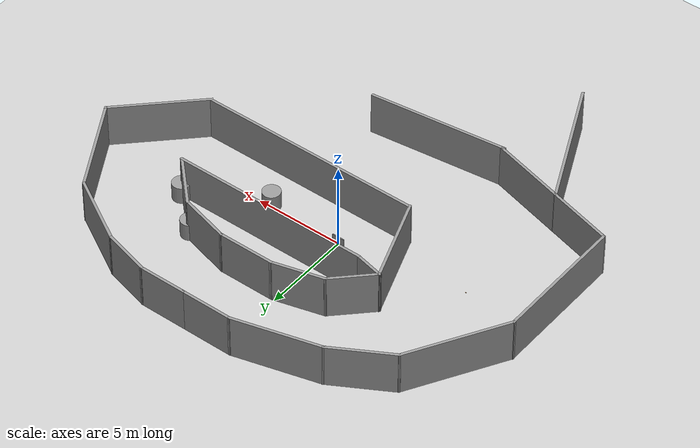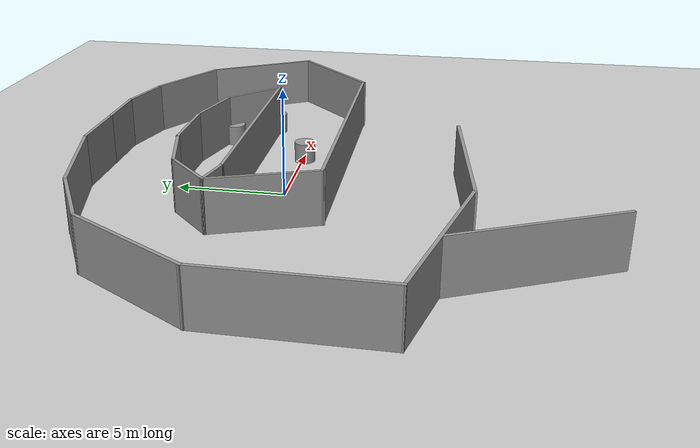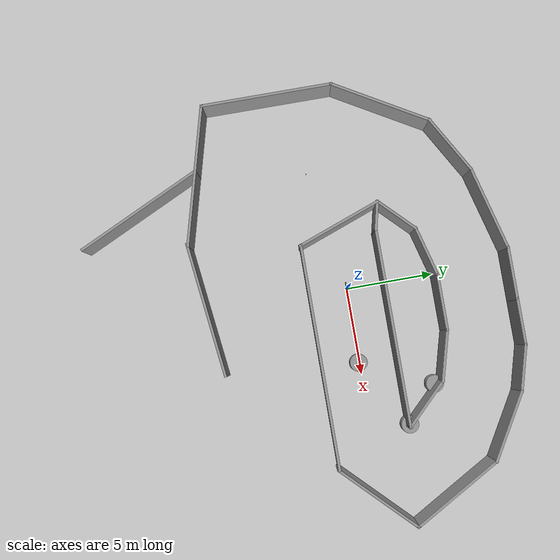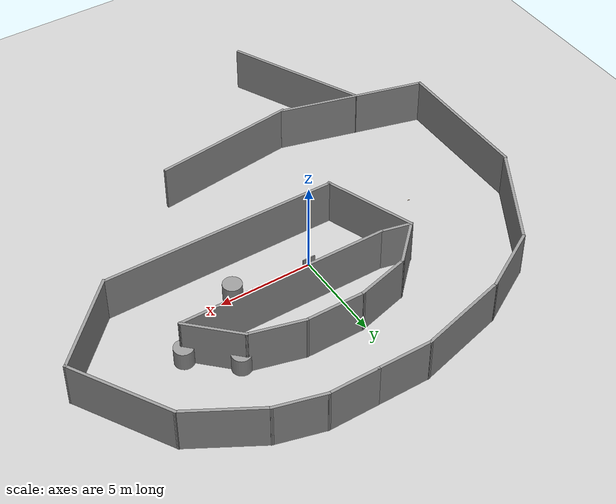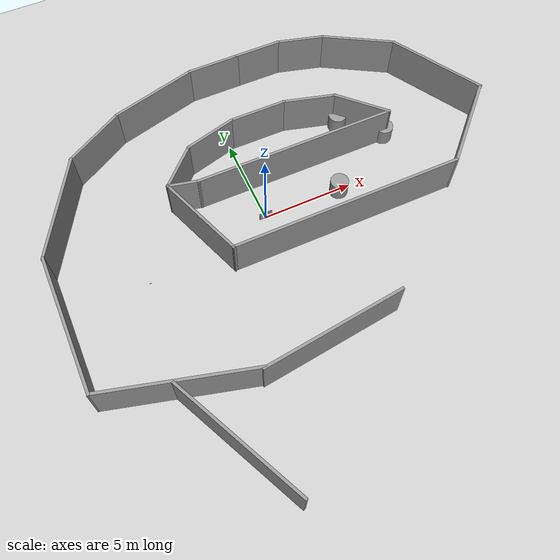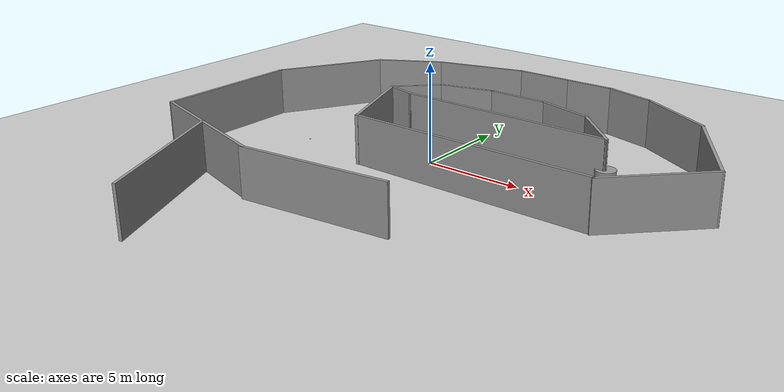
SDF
<sdf version="1.7">
 <world name="default">
  <light name="sun" type="directional">
   <pose>0 0 10 0 -0 0</pose>
   <diffuse>0.8 0.8 0.8 1</diffuse>
   <specular>0.2 0.2 0.2 1</specular>
   <attenuation>
    <range>1000</range>
    <constant>0.9</constant>
    <linear>0.01</linear>
    <quadratic>0.001</quadratic>
   </attenuation>
   <direction>-0.5 0.1 -0.9</direction>
   <spot><inner_angle>0</inner_angle><outer_angle>0</outer_angle><falloff>0</falloff></spot>
  </light>
  <model name="ground_plane">
   <static>1</static>
   <link name="link">
    <collision name="collision">
     <geometry><plane><normal>0 0 1</normal><size>100 100</size></plane></geometry>
     <surface><friction><ode><mu>100</mu><mu2>50</mu2></ode></friction></surface>
    </collision>
    <visual name="visual">
     <cast_shadows>0</cast_shadows>
     <geometry><plane><normal>0 0 1</normal><size>100 100</size></plane></geometry>
     <material>
      <script><uri>file://media/materials/scripts/gazebo.material</uri><name>Gazebo/Grey</name></script>
     </material>
    </visual>
   </link>
  </model>
  <gravity>0 0 -9.8</gravity>
  <magnetic_field>6e-06 2.3e-05 -4.2e-05</magnetic_field>
  <atmosphere type="adiabatic"/>
  <physics type="ode">
   <max_step_size>0.001</max_step_size>
   <real_time_factor>1</real_time_factor>
   <real_time_update_rate>1000</real_time_update_rate>
  </physics>
  <scene><ambient>0.4 0.4 0.4 1</ambient><background>0.7 0.7 0.7 1</background><shadows>1</shadows></scene>
  <spherical_coordinates>
   <surface_model>EARTH_WGS84</surface_model>
   <latitude_deg>0</latitude_deg>
   <longitude_deg>0</longitude_deg>
   <elevation>0</elevation>
   <heading_deg>0</heading_deg>
  </spherical_coordinates>
  <model name="Untitled">
   <link name="Wall_10">
    <pose>-2.36021 4.26333 0 0 0 -2.87979</pose>
    <visual name="Wall_10_Visual">
     <pose>0 0 1.25 0 -0 0</pose>
     <geometry><box><size>3 0.15 2.5</size></box></geometry>
     <material>
      <script><uri>file://media/materials/scripts/gazebo.material</uri><name>Gazebo/Grey</name></script>
      <ambient>1 1 1 1</ambient>
      <shader type="pixel"/>
     </material>
     <meta><layer>0</layer></meta>
    </visual>
    <collision name="Wall_10_Collision">
     <pose>0 0 1.25 0 -0 0</pose>
     <geometry><box><size>3 0.15 2.5</size></box></geometry>
     <surface>
      <friction>
       <ode><mu>1</mu><mu2>1</mu2><fdir1>0 0 0</fdir1><slip1>0</slip1><slip2>0</slip2></ode>
       <torsional>
        <coefficient>1</coefficient>
        <patch_radius>0</patch_radius>
        <surface_radius>0</surface_radius>
        <use_patch_radius>1</use_patch_radius>
        <ode><slip>0</slip></ode>
       </torsional>
      </friction>
      <bounce><restitution_coefficient>0</restitution_coefficient><threshold>1e+06</threshold></bounce>
      <contact>
       <collide_without_contact>0</collide_without_contact>
       <collide_without_contact_bitmask>1</collide_without_contact_bitmask>
       <collide_bitmask>1</collide_bitmask>
       <ode>
        <soft_cfm>0</soft_cfm>
        <soft_erp>0.2</soft_erp>
        <kp>1e+13</kp>
        <kd>1</kd>
        <max_vel>0.01</max_vel>
        <min_depth>0</min_depth>
       </ode>
       <bullet>
        <split_impulse>1</split_impulse>
        <split_impulse_penetration_threshold>-0.01</split_impulse_penetration_threshold>
        <soft_cfm>0</soft_cfm>
        <soft_erp>0.2</soft_erp>
        <kp>1e+13</kp>
        <kd>1</kd>
       </bullet>
      </contact>
     </surface>
    </collision>
   </link>
   <link name="Wall_11">
    <pose>-4.65589 2.97527 0 0 0 -2.35619</pose>
    <visual name="Wall_11_Visual">
     <pose>0 0 1.25 0 -0 0</pose>
     <geometry><box><size>2.75 0.15 2.5</size></box></geometry>
     <material>
      <script><uri>file://media/materials/scripts/gazebo.material</uri><name>Gazebo/Grey</name></script>
      <ambient>1 1 1 1</ambient>
      <shader type="pixel"/>
     </material>
     <meta><layer>0</layer></meta>
    </visual>
    <collision name="Wall_11_Collision">
     <pose>0 0 1.25 0 -0 0</pose>
     <geometry><box><size>2.75 0.15 2.5</size></box></geometry>
     <surface>
      <friction>
       <ode><mu>1</mu><mu2>1</mu2><fdir1>0 0 0</fdir1><slip1>0</slip1><slip2>0</slip2></ode>
       <torsional>
        <coefficient>1</coefficient>
        <patch_radius>0</patch_radius>
        <surface_radius>0</surface_radius>
        <use_patch_radius>1</use_patch_radius>
        <ode><slip>0</slip></ode>
       </torsional>
      </friction>
      <bounce><restitution_coefficient>0</restitution_coefficient><threshold>1e+06</threshold></bounce>
      <contact>
       <collide_without_contact>0</collide_without_contact>
       <collide_without_contact_bitmask>1</collide_without_contact_bitmask>
       <collide_bitmask>1</collide_bitmask>
       <ode>
        <soft_cfm>0</soft_cfm>
        <soft_erp>0.2</soft_erp>
        <kp>1e+13</kp>
        <kd>1</kd>
        <max_vel>0.01</max_vel>
        <min_depth>0</min_depth>
       </ode>
       <bullet>
        <split_impulse>1</split_impulse>
        <split_impulse_penetration_threshold>-0.01</split_impulse_penetration_threshold>
        <soft_cfm>0</soft_cfm>
        <soft_erp>0.2</soft_erp>
        <kp>1e+13</kp>
        <kd>1</kd>
       </bullet>
      </contact>
     </surface>
    </collision>
   </link>
   <link name="Wall_12">
    <pose>-4.80699 1.87926 0 0 0 -0.226197</pose>
    <visual name="Wall_12_Visual">
     <pose>0 0 1.25 0 -0 0</pose>
     <geometry><box><size>1.72644 0.15 2.5</size></box></geometry>
     <material>
      <script><uri>file://media/materials/scripts/gazebo.material</uri><name>Gazebo/Grey</name></script>
      <ambient>1 1 1 1</ambient>
      <shader type="pixel"/>
     </material>
     <meta><layer>0</layer></meta>
    </visual>
    <collision name="Wall_12_Collision">
     <pose>0 0 1.25 0 -0 0</pose>
     <geometry><box><size>1.72644 0.15 2.5</size></box></geometry>
     <surface>
      <friction>
       <ode><mu>1</mu><mu2>1</mu2><fdir1>0 0 0</fdir1><slip1>0</slip1><slip2>0</slip2></ode>
       <torsional>
        <coefficient>1</coefficient>
        <patch_radius>0</patch_radius>
        <surface_radius>0</surface_radius>
        <use_patch_radius>1</use_patch_radius>
        <ode><slip>0</slip></ode>
       </torsional>
      </friction>
      <bounce><restitution_coefficient>0</restitution_coefficient><threshold>1e+06</threshold></bounce>
      <contact>
       <collide_without_contact>0</collide_without_contact>
       <collide_without_contact_bitmask>1</collide_without_contact_bitmask>
       <collide_bitmask>1</collide_bitmask>
       <ode>
        <soft_cfm>0</soft_cfm>
        <soft_erp>0.2</soft_erp>
        <kp>1e+13</kp>
        <kd>1</kd>
        <max_vel>0.01</max_vel>
        <min_depth>0</min_depth>
       </ode>
       <bullet>
        <split_impulse>1</split_impulse>
        <split_impulse_penetration_threshold>-0.01</split_impulse_penetration_threshold>
        <soft_cfm>0</soft_cfm>
        <soft_erp>0.2</soft_erp>
        <kp>1e+13</kp>
        <kd>1</kd>
       </bullet>
      </contact>
     </surface>
    </collision>
   </link>
   <link name="Wall_21">
    <pose>2.41944 -2.56 0 0 -0 0</pose>
    <visual name="Wall_21_Visual">
     <pose>0 0 1.25 0 -0 0</pose>
     <geometry><box><size>12.75 0.15 2.5</size></box></geometry>
     <material>
      <script><uri>file://media/materials/scripts/gazebo.material</uri><name>Gazebo/Grey</name></script>
      <ambient>1 1 1 1</ambient>
      <shader type="pixel"/>
     </material>
     <meta><layer>0</layer></meta>
    </visual>
    <collision name="Wall_21_Collision">
     <pose>0 0 1.25 0 -0 0</pose>
     <geometry><box><size>12.75 0.15 2.5</size></box></geometry>
     <surface>
      <friction>
       <ode><mu>1</mu><mu2>1</mu2><fdir1>0 0 0</fdir1><slip1>0</slip1><slip2>0</slip2></ode>
       <torsional>
        <coefficient>1</coefficient>
        <patch_radius>0</patch_radius>
        <surface_radius>0</surface_radius>
        <use_patch_radius>1</use_patch_radius>
        <ode><slip>0</slip></ode>
       </torsional>
      </friction>
      <bounce><restitution_coefficient>0</restitution_coefficient><threshold>1e+06</threshold></bounce>
      <contact>
       <collide_without_contact>0</collide_without_contact>
       <collide_without_contact_bitmask>1</collide_without_contact_bitmask>
       <collide_bitmask>1</collide_bitmask>
       <ode>
        <soft_cfm>0</soft_cfm>
        <soft_erp>0.2</soft_erp>
        <kp>1e+13</kp>
        <kd>1</kd>
        <max_vel>0.01</max_vel>
        <min_depth>0</min_depth>
       </ode>
       <bullet>
        <split_impulse>1</split_impulse>
        <split_impulse_penetration_threshold>-0.01</split_impulse_penetration_threshold>
        <soft_cfm>0</soft_cfm>
        <soft_erp>0.2</soft_erp>
        <kp>1e+13</kp>
        <kd>1</kd>
       </bullet>
      </contact>
     </surface>
    </collision>
   </link>
   <link name="Wall_22">
    <pose>10.6265 -0.705453 0 0 -0 0.785398</pose>
    <visual name="Wall_22_Visual">
     <pose>0 0 1.25 0 -0 0</pose>
     <geometry><box><size>5.5 0.15 2.5</size></box></geometry>
     <material>
      <script><uri>file://media/materials/scripts/gazebo.material</uri><name>Gazebo/Grey</name></script>
      <ambient>1 1 1 1</ambient>
      <shader type="pixel"/>
     </material>
     <meta><layer>0</layer></meta>
    </visual>
    <collision name="Wall_22_Collision">
     <pose>0 0 1.25 0 -0 0</pose>
     <geometry><box><size>5.5 0.15 2.5</size></box></geometry>
     <surface>
      <friction>
       <ode><mu>1</mu><mu2>1</mu2><fdir1>0 0 0</fdir1><slip1>0</slip1><slip2>0</slip2></ode>
       <torsional>
        <coefficient>1</coefficient>
        <patch_radius>0</patch_radius>
        <surface_radius>0</surface_radius>
        <use_patch_radius>1</use_patch_radius>
        <ode><slip>0</slip></ode>
       </torsional>
      </friction>
      <bounce><restitution_coefficient>0</restitution_coefficient><threshold>1e+06</threshold></bounce>
      <contact>
       <collide_without_contact>0</collide_without_contact>
       <collide_without_contact_bitmask>1</collide_without_contact_bitmask>
       <collide_bitmask>1</collide_bitmask>
       <ode>
        <soft_cfm>0</soft_cfm>
        <soft_erp>0.2</soft_erp>
        <kp>1e+13</kp>
        <kd>1</kd>
        <max_vel>0.01</max_vel>
        <min_depth>0</min_depth>
       </ode>
       <bullet>
        <split_impulse>1</split_impulse>
        <split_impulse_penetration_threshold>-0.01</split_impulse_penetration_threshold>
        <soft_cfm>0</soft_cfm>
        <soft_erp>0.2</soft_erp>
        <kp>1e+13</kp>
        <kd>1</kd>
       </bullet>
      </contact>
     </surface>
    </collision>
   </link>
   <link name="Wall_23">
    <pose>11.118 3.61093 0 0 -0 2.0944</pose>
    <visual name="Wall_23_Visual">
     <pose>0 0 1.25 0 -0 0</pose>
     <geometry><box><size>5.75 0.15 2.5</size></box></geometry>
     <material>
      <script><uri>file://media/materials/scripts/gazebo.material</uri><name>Gazebo/Grey</name></script>
      <ambient>1 1 1 1</ambient>
      <shader type="pixel"/>
     </material>
     <meta><layer>0</layer></meta>
    </visual>
    <collision name="Wall_23_Collision">
     <pose>0 0 1.25 0 -0 0</pose>
     <geometry><box><size>5.75 0.15 2.5</size></box></geometry>
     <surface>
      <friction>
       <ode><mu>1</mu><mu2>1</mu2><fdir1>0 0 0</fdir1><slip1>0</slip1><slip2>0</slip2></ode>
       <torsional>
        <coefficient>1</coefficient>
        <patch_radius>0</patch_radius>
        <surface_radius>0</surface_radius>
        <use_patch_radius>1</use_patch_radius>
        <ode><slip>0</slip></ode>
       </torsional>
      </friction>
      <bounce><restitution_coefficient>0</restitution_coefficient><threshold>1e+06</threshold></bounce>
      <contact>
       <collide_without_contact>0</collide_without_contact>
       <collide_without_contact_bitmask>1</collide_without_contact_bitmask>
       <collide_bitmask>1</collide_bitmask>
       <ode>
        <soft_cfm>0</soft_cfm>
        <soft_erp>0.2</soft_erp>
        <kp>1e+13</kp>
        <kd>1</kd>
        <max_vel>0.01</max_vel>
        <min_depth>0</min_depth>
       </ode>
       <bullet>
        <split_impulse>1</split_impulse>
        <split_impulse_penetration_threshold>-0.01</split_impulse_penetration_threshold>
        <soft_cfm>0</soft_cfm>
        <soft_erp>0.2</soft_erp>
        <kp>1e+13</kp>
        <kd>1</kd>
       </bullet>
      </contact>
     </surface>
    </collision>
   </link>
   <link name="Wall_24">
    <pose>7.94261 7.0608 0 0 -0 2.61799</pose>
    <visual name="Wall_24_Visual">
     <pose>0 0 1.25 0 -0 0</pose>
     <geometry><box><size>4.25 0.15 2.5</size></box></geometry>
     <material>
      <script><uri>file://media/materials/scripts/gazebo.material</uri><name>Gazebo/Grey</name></script>
      <ambient>1 1 1 1</ambient>
      <shader type="pixel"/>
     </material>
     <meta><layer>0</layer></meta>
    </visual>
    <collision name="Wall_24_Collision">
     <pose>0 0 1.25 0 -0 0</pose>
     <geometry><box><size>4.25 0.15 2.5</size></box></geometry>
     <surface>
      <friction>
       <ode><mu>1</mu><mu2>1</mu2><fdir1>0 0 0</fdir1><slip1>0</slip1><slip2>0</slip2></ode>
       <torsional>
        <coefficient>1</coefficient>
        <patch_radius>0</patch_radius>
        <surface_radius>0</surface_radius>
        <use_patch_radius>1</use_patch_radius>
        <ode><slip>0</slip></ode>
       </torsional>
      </friction>
      <bounce><restitution_coefficient>0</restitution_coefficient><threshold>1e+06</threshold></bounce>
      <contact>
       <collide_without_contact>0</collide_without_contact>
       <collide_without_contact_bitmask>1</collide_without_contact_bitmask>
       <collide_bitmask>1</collide_bitmask>
       <ode>
        <soft_cfm>0</soft_cfm>
        <soft_erp>0.2</soft_erp>
        <kp>1e+13</kp>
        <kd>1</kd>
        <max_vel>0.01</max_vel>
        <min_depth>0</min_depth>
       </ode>
       <bullet>
        <split_impulse>1</split_impulse>
        <split_impulse_penetration_threshold>-0.01</split_impulse_penetration_threshold>
        <soft_cfm>0</soft_cfm>
        <soft_erp>0.2</soft_erp>
        <kp>1e+13</kp>
        <kd>1</kd>
       </bullet>
      </contact>
     </surface>
    </collision>
   </link>
   <link name="Wall_25">
    <pose>4.91156 8.42226 0 0 -0 2.87979</pose>
    <visual name="Wall_25_Visual">
     <pose>0 0 1.25 0 -0 0</pose>
     <geometry><box><size>2.75 0.15 2.5</size></box></geometry>
     <material>
      <script><uri>file://media/materials/scripts/gazebo.material</uri><name>Gazebo/Grey</name></script>
      <ambient>1 1 1 1</ambient>
      <shader type="pixel"/>
     </material>
     <meta><layer>0</layer></meta>
    </visual>
    <collision name="Wall_25_Collision">
     <pose>0 0 1.25 0 -0 0</pose>
     <geometry><box><size>2.75 0.15 2.5</size></box></geometry>
     <surface>
      <friction>
       <ode><mu>1</mu><mu2>1</mu2><fdir1>0 0 0</fdir1><slip1>0</slip1><slip2>0</slip2></ode>
       <torsional>
        <coefficient>1</coefficient>
        <patch_radius>0</patch_radius>
        <surface_radius>0</surface_radius>
        <use_patch_radius>1</use_patch_radius>
        <ode><slip>0</slip></ode>
       </torsional>
      </friction>
      <bounce><restitution_coefficient>0</restitution_coefficient><threshold>1e+06</threshold></bounce>
      <contact>
       <collide_without_contact>0</collide_without_contact>
       <collide_without_contact_bitmask>1</collide_without_contact_bitmask>
       <collide_bitmask>1</collide_bitmask>
       <ode>
        <soft_cfm>0</soft_cfm>
        <soft_erp>0.2</soft_erp>
        <kp>1e+13</kp>
        <kd>1</kd>
        <max_vel>0.01</max_vel>
        <min_depth>0</min_depth>
       </ode>
       <bullet>
        <split_impulse>1</split_impulse>
        <split_impulse_penetration_threshold>-0.01</split_impulse_penetration_threshold>
        <soft_cfm>0</soft_cfm>
        <soft_erp>0.2</soft_erp>
        <kp>1e+13</kp>
        <kd>1</kd>
       </bullet>
      </contact>
     </surface>
    </collision>
   </link>
   <link name="Wall_26">
    <pose>2.35585 8.75873 0 0 -0 3.14159</pose>
    <visual name="Wall_26_Visual">
     <pose>0 0 1.25 0 -0 0</pose>
     <geometry><box><size>2.75 0.15 2.5</size></box></geometry>
     <material>
      <script><uri>file://media/materials/scripts/gazebo.material</uri><name>Gazebo/Grey</name></script>
      <ambient>1 1 1 1</ambient>
      <shader type="pixel"/>
     </material>
     <meta><layer>0</layer></meta>
    </visual>
    <collision name="Wall_26_Collision">
     <pose>0 0 1.25 0 -0 0</pose>
     <geometry><box><size>2.75 0.15 2.5</size></box></geometry>
     <surface>
      <friction>
       <ode><mu>1</mu><mu2>1</mu2><fdir1>0 0 0</fdir1><slip1>0</slip1><slip2>0</slip2></ode>
       <torsional>
        <coefficient>1</coefficient>
        <patch_radius>0</patch_radius>
        <surface_radius>0</surface_radius>
        <use_patch_radius>1</use_patch_radius>
        <ode><slip>0</slip></ode>
       </torsional>
      </friction>
      <bounce><restitution_coefficient>0</restitution_coefficient><threshold>1e+06</threshold></bounce>
      <contact>
       <collide_without_contact>0</collide_without_contact>
       <collide_without_contact_bitmask>1</collide_without_contact_bitmask>
       <collide_bitmask>1</collide_bitmask>
       <ode>
        <soft_cfm>0</soft_cfm>
        <soft_erp>0.2</soft_erp>
        <kp>1e+13</kp>
        <kd>1</kd>
        <max_vel>0.01</max_vel>
        <min_depth>0</min_depth>
       </ode>
       <bullet>
        <split_impulse>1</split_impulse>
        <split_impulse_penetration_threshold>-0.01</split_impulse_penetration_threshold>
        <soft_cfm>0</soft_cfm>
        <soft_erp>0.2</soft_erp>
        <kp>1e+13</kp>
        <kd>1</kd>
       </bullet>
      </contact>
     </surface>
    </collision>
   </link>
   <link name="Wall_27">
    <pose>-0.369147 8.75873 0 0 -0 3.14159</pose>
    <visual name="Wall_27_Visual">
     <pose>0 0 1.25 0 -0 0</pose>
     <geometry><box><size>3 0.15 2.5</size></box></geometry>
     <material>
      <script><uri>file://media/materials/scripts/gazebo.material</uri><name>Gazebo/Grey</name></script>
      <ambient>1 1 1 1</ambient>
      <shader type="pixel"/>
     </material>
     <meta><layer>0</layer></meta>
    </visual>
    <collision name="Wall_27_Collision">
     <pose>0 0 1.25 0 -0 0</pose>
     <geometry><box><size>3 0.15 2.5</size></box></geometry>
     <surface>
      <friction>
       <ode><mu>1</mu><mu2>1</mu2><fdir1>0 0 0</fdir1><slip1>0</slip1><slip2>0</slip2></ode>
       <torsional>
        <coefficient>1</coefficient>
        <patch_radius>0</patch_radius>
        <surface_radius>0</surface_radius>
        <use_patch_radius>1</use_patch_radius>
        <ode><slip>0</slip></ode>
       </torsional>
      </friction>
      <bounce><restitution_coefficient>0</restitution_coefficient><threshold>1e+06</threshold></bounce>
      <contact>
       <collide_without_contact>0</collide_without_contact>
       <collide_without_contact_bitmask>1</collide_without_contact_bitmask>
       <collide_bitmask>1</collide_bitmask>
       <ode>
        <soft_cfm>0</soft_cfm>
        <soft_erp>0.2</soft_erp>
        <kp>1e+13</kp>
        <kd>1</kd>
        <max_vel>0.01</max_vel>
        <min_depth>0</min_depth>
       </ode>
       <bullet>
        <split_impulse>1</split_impulse>
        <split_impulse_penetration_threshold>-0.01</split_impulse_penetration_threshold>
        <soft_cfm>0</soft_cfm>
        <soft_erp>0.2</soft_erp>
        <kp>1e+13</kp>
        <kd>1</kd>
       </bullet>
      </contact>
     </surface>
    </collision>
   </link>
   <link name="Wall_28">
    <pose>-4.13652 8.13109 0 0 0 -2.87979</pose>
    <visual name="Wall_28_Visual">
     <pose>0 0 1.25 0 -0 0</pose>
     <geometry><box><size>5 0.15 2.5</size></box></geometry>
     <material>
      <script><uri>file://media/materials/scripts/gazebo.material</uri><name>Gazebo/Grey</name></script>
      <ambient>1 1 1 1</ambient>
      <shader type="pixel"/>
     </material>
     <meta><layer>0</layer></meta>
    </visual>
    <collision name="Wall_28_Collision">
     <pose>0 0 1.25 0 -0 0</pose>
     <geometry><box><size>5 0.15 2.5</size></box></geometry>
     <surface>
      <friction>
       <ode><mu>1</mu><mu2>1</mu2><fdir1>0 0 0</fdir1><slip1>0</slip1><slip2>0</slip2></ode>
       <torsional>
        <coefficient>1</coefficient>
        <patch_radius>0</patch_radius>
        <surface_radius>0</surface_radius>
        <use_patch_radius>1</use_patch_radius>
        <ode><slip>0</slip></ode>
       </torsional>
      </friction>
      <bounce><restitution_coefficient>0</restitution_coefficient><threshold>1e+06</threshold></bounce>
      <contact>
       <collide_without_contact>0</collide_without_contact>
       <collide_without_contact_bitmask>1</collide_without_contact_bitmask>
       <collide_bitmask>1</collide_bitmask>
       <ode>
        <soft_cfm>0</soft_cfm>
        <soft_erp>0.2</soft_erp>
        <kp>1e+13</kp>
        <kd>1</kd>
        <max_vel>0.01</max_vel>
        <min_depth>0</min_depth>
       </ode>
       <bullet>
        <split_impulse>1</split_impulse>
        <split_impulse_penetration_threshold>-0.01</split_impulse_penetration_threshold>
        <soft_cfm>0</soft_cfm>
        <soft_erp>0.2</soft_erp>
        <kp>1e+13</kp>
        <kd>1</kd>
       </bullet>
      </contact>
     </surface>
    </collision>
   </link>
   <link name="Wall_29">
    <pose>-8.03773 6.60346 0 0 0 -2.61799</pose>
    <visual name="Wall_29_Visual">
     <pose>0 0 1.25 0 -0 0</pose>
     <geometry><box><size>3.75 0.15 2.5</size></box></geometry>
     <material>
      <script><uri>file://media/materials/scripts/gazebo.material</uri><name>Gazebo/Grey</name></script>
      <ambient>1 1 1 1</ambient>
      <shader type="pixel"/>
     </material>
     <meta><layer>0</layer></meta>
    </visual>
    <collision name="Wall_29_Collision">
     <pose>0 0 1.25 0 -0 0</pose>
     <geometry><box><size>3.75 0.15 2.5</size></box></geometry>
     <surface>
      <friction>
       <ode><mu>1</mu><mu2>1</mu2><fdir1>0 0 0</fdir1><slip1>0</slip1><slip2>0</slip2></ode>
       <torsional>
        <coefficient>1</coefficient>
        <patch_radius>0</patch_radius>
        <surface_radius>0</surface_radius>
        <use_patch_radius>1</use_patch_radius>
        <ode><slip>0</slip></ode>
       </torsional>
      </friction>
      <bounce><restitution_coefficient>0</restitution_coefficient><threshold>1e+06</threshold></bounce>
      <contact>
       <collide_without_contact>0</collide_without_contact>
       <collide_without_contact_bitmask>1</collide_without_contact_bitmask>
       <collide_bitmask>1</collide_bitmask>
       <ode>
        <soft_cfm>0</soft_cfm>
        <soft_erp>0.2</soft_erp>
        <kp>1e+13</kp>
        <kd>1</kd>
        <max_vel>0.01</max_vel>
        <min_depth>0</min_depth>
       </ode>
       <bullet>
        <split_impulse>1</split_impulse>
        <split_impulse_penetration_threshold>-0.01</split_impulse_penetration_threshold>
        <soft_cfm>0</soft_cfm>
        <soft_erp>0.2</soft_erp>
        <kp>1e+13</kp>
        <kd>1</kd>
       </bullet>
      </contact>
     </surface>
    </collision>
   </link>
   <link name="Wall_31">
    <pose>-11.0591 3.17033 0 0 0 -2.0944</pose>
    <visual name="Wall_31_Visual">
     <pose>0 0 1.25 0 -0 0</pose>
     <geometry><box><size>6 0.15 2.5</size></box></geometry>
     <material>
      <script><uri>file://media/materials/scripts/gazebo.material</uri><name>Gazebo/Grey</name></script>
      <ambient>1 1 1 1</ambient>
      <shader type="pixel"/>
     </material>
     <meta><layer>0</layer></meta>
    </visual>
    <collision name="Wall_31_Collision">
     <pose>0 0 1.25 0 -0 0</pose>
     <geometry><box><size>6 0.15 2.5</size></box></geometry>
     <surface>
      <friction>
       <ode><mu>1</mu><mu2>1</mu2><fdir1>0 0 0</fdir1><slip1>0</slip1><slip2>0</slip2></ode>
       <torsional>
        <coefficient>1</coefficient>
        <patch_radius>0</patch_radius>
        <surface_radius>0</surface_radius>
        <use_patch_radius>1</use_patch_radius>
        <ode><slip>0</slip></ode>
       </torsional>
      </friction>
      <bounce><restitution_coefficient>0</restitution_coefficient><threshold>1e+06</threshold></bounce>
      <contact>
       <collide_without_contact>0</collide_without_contact>
       <collide_without_contact_bitmask>1</collide_without_contact_bitmask>
       <collide_bitmask>1</collide_bitmask>
       <ode>
        <soft_cfm>0</soft_cfm>
        <soft_erp>0.2</soft_erp>
        <kp>1e+13</kp>
        <kd>1</kd>
        <max_vel>0.01</max_vel>
        <min_depth>0</min_depth>
       </ode>
       <bullet>
        <split_impulse>1</split_impulse>
        <split_impulse_penetration_threshold>-0.01</split_impulse_penetration_threshold>
        <soft_cfm>0</soft_cfm>
        <soft_erp>0.2</soft_erp>
        <kp>1e+13</kp>
        <kd>1</kd>
       </bullet>
      </contact>
     </surface>
    </collision>
   </link>
   <link name="Wall_32">
    <pose>-12.5216 -3.03779 0 0 0 -1.5708</pose>
    <visual name="Wall_32_Visual">
     <pose>0 0 1.25 0 -0 0</pose>
     <geometry><box><size>7.5 0.15 2.5</size></box></geometry>
     <material>
      <script><uri>file://media/materials/scripts/gazebo.material</uri><name>Gazebo/Grey</name></script>
      <ambient>1 1 1 1</ambient>
      <shader type="pixel"/>
     </material>
     <meta><layer>0</layer></meta>
    </visual>
    <collision name="Wall_32_Collision">
     <pose>0 0 1.25 0 -0 0</pose>
     <geometry><box><size>7.5 0.15 2.5</size></box></geometry>
     <surface>
      <friction>
       <ode><mu>1</mu><mu2>1</mu2><fdir1>0 0 0</fdir1><slip1>0</slip1><slip2>0</slip2></ode>
       <torsional>
        <coefficient>1</coefficient>
        <patch_radius>0</patch_radius>
        <surface_radius>0</surface_radius>
        <use_patch_radius>1</use_patch_radius>
        <ode><slip>0</slip></ode>
       </torsional>
      </friction>
      <bounce><restitution_coefficient>0</restitution_coefficient><threshold>1e+06</threshold></bounce>
      <contact>
       <collide_without_contact>0</collide_without_contact>
       <collide_without_contact_bitmask>1</collide_without_contact_bitmask>
       <collide_bitmask>1</collide_bitmask>
       <ode>
        <soft_cfm>0</soft_cfm>
        <soft_erp>0.2</soft_erp>
        <kp>1e+13</kp>
        <kd>1</kd>
        <max_vel>0.01</max_vel>
        <min_depth>0</min_depth>
       </ode>
       <bullet>
        <split_impulse>1</split_impulse>
        <split_impulse_penetration_threshold>-0.01</split_impulse_penetration_threshold>
        <soft_cfm>0</soft_cfm>
        <soft_erp>0.2</soft_erp>
        <kp>1e+13</kp>
        <kd>1</kd>
       </bullet>
      </contact>
     </surface>
    </collision>
   </link>
   <link name="Wall_33">
    <pose>-8.73032 -7.72866 0 0 0 -0.261799</pose>
    <visual name="Wall_33_Visual">
     <pose>0 0 1.25 0 -0 0</pose>
     <geometry><box><size>8 0.15 2.5</size></box></geometry>
     <material>
      <script><uri>file://media/materials/scripts/gazebo.material</uri><name>Gazebo/Grey</name></script>
      <ambient>1 1 1 1</ambient>
      <shader type="pixel"/>
     </material>
     <meta><layer>0</layer></meta>
    </visual>
    <collision name="Wall_33_Collision">
     <pose>0 0 1.25 0 -0 0</pose>
     <geometry><box><size>8 0.15 2.5</size></box></geometry>
     <surface>
      <friction>
       <ode><mu>1</mu><mu2>1</mu2><fdir1>0 0 0</fdir1><slip1>0</slip1><slip2>0</slip2></ode>
       <torsional>
        <coefficient>1</coefficient>
        <patch_radius>0</patch_radius>
        <surface_radius>0</surface_radius>
        <use_patch_radius>1</use_patch_radius>
        <ode><slip>0</slip></ode>
       </torsional>
      </friction>
      <bounce><restitution_coefficient>0</restitution_coefficient><threshold>1e+06</threshold></bounce>
      <contact>
       <collide_without_contact>0</collide_without_contact>
       <collide_without_contact_bitmask>1</collide_without_contact_bitmask>
       <collide_bitmask>1</collide_bitmask>
       <ode>
        <soft_cfm>0</soft_cfm>
        <soft_erp>0.2</soft_erp>
        <kp>1e+13</kp>
        <kd>1</kd>
        <max_vel>0.01</max_vel>
        <min_depth>0</min_depth>
       </ode>
       <bullet>
        <split_impulse>1</split_impulse>
        <split_impulse_penetration_threshold>-0.01</split_impulse_penetration_threshold>
        <soft_cfm>0</soft_cfm>
        <soft_erp>0.2</soft_erp>
        <kp>1e+13</kp>
        <kd>1</kd>
       </bullet>
      </contact>
     </surface>
    </collision>
   </link>
   <link name="Wall_34">
    <pose>-1.23931 -8.34059 0 0 -0 0.11774</pose>
    <visual name="Wall_34_Visual">
     <pose>0 0 1.25 0 -0 0</pose>
     <geometry><box><size>7.75 0.15 2.5</size></box></geometry>
     <material>
      <script><uri>file://media/materials/scripts/gazebo.material</uri><name>Gazebo/Grey</name></script>
      <ambient>1 1 1 1</ambient>
      <shader type="pixel"/>
     </material>
     <meta><layer>0</layer></meta>
    </visual>
    <collision name="Wall_34_Collision">
     <pose>0 0 1.25 0 -0 0</pose>
     <geometry><box><size>7.75 0.15 2.5</size></box></geometry>
     <surface>
      <friction>
       <ode><mu>1</mu><mu2>1</mu2><fdir1>0 0 0</fdir1><slip1>0</slip1><slip2>0</slip2></ode>
       <torsional>
        <coefficient>1</coefficient>
        <patch_radius>0</patch_radius>
        <surface_radius>0</surface_radius>
        <use_patch_radius>1</use_patch_radius>
        <ode><slip>0</slip></ode>
       </torsional>
      </friction>
      <bounce><restitution_coefficient>0</restitution_coefficient><threshold>1e+06</threshold></bounce>
      <contact>
       <collide_without_contact>0</collide_without_contact>
       <collide_without_contact_bitmask>1</collide_without_contact_bitmask>
       <collide_bitmask>1</collide_bitmask>
       <ode>
        <soft_cfm>0</soft_cfm>
        <soft_erp>0.2</soft_erp>
        <kp>1e+13</kp>
        <kd>1</kd>
        <max_vel>0.01</max_vel>
        <min_depth>0</min_depth>
       </ode>
       <bullet>
        <split_impulse>1</split_impulse>
        <split_impulse_penetration_threshold>-0.01</split_impulse_penetration_threshold>
        <soft_cfm>0</soft_cfm>
        <soft_erp>0.2</soft_erp>
        <kp>1e+13</kp>
        <kd>1</kd>
       </bullet>
      </contact>
     </surface>
    </collision>
   </link>
   <link name="Wall_34_clone">
    <pose>-7.33893 -11.1151 0 0 -0 2.01253</pose>
    <visual name="Wall_34_Visual">
     <pose>0 0 1.25 0 -0 0</pose>
     <geometry><box><size>7.75 0.15 2.5</size></box></geometry>
     <material>
      <script><uri>file://media/materials/scripts/gazebo.material</uri><name>Gazebo/Grey</name></script>
      <ambient>1 1 1 1</ambient>
      <shader type="pixel"/>
     </material>
     <meta><layer>0</layer></meta>
    </visual>
    <collision name="Wall_34_Collision">
     <pose>0 0 1.25 0 -0 0</pose>
     <geometry><box><size>7.75 0.15 2.5</size></box></geometry>
     <surface>
      <friction>
       <ode><mu>1</mu><mu2>1</mu2><fdir1>0 0 0</fdir1><slip1>0</slip1><slip2>0</slip2></ode>
       <torsional>
        <coefficient>1</coefficient>
        <patch_radius>0</patch_radius>
        <surface_radius>0</surface_radius>
        <use_patch_radius>1</use_patch_radius>
        <ode><slip>0</slip></ode>
       </torsional>
      </friction>
      <bounce><restitution_coefficient>0</restitution_coefficient><threshold>1e+06</threshold></bounce>
      <contact>
       <collide_without_contact>0</collide_without_contact>
       <collide_without_contact_bitmask>1</collide_without_contact_bitmask>
       <collide_bitmask>1</collide_bitmask>
       <ode>
        <soft_cfm>0</soft_cfm>
        <soft_erp>0.2</soft_erp>
        <kp>1e+13</kp>
        <kd>1</kd>
        <max_vel>0.01</max_vel>
        <min_depth>0</min_depth>
       </ode>
       <bullet>
        <split_impulse>1</split_impulse>
        <split_impulse_penetration_threshold>-0.01</split_impulse_penetration_threshold>
        <soft_cfm>0</soft_cfm>
        <soft_erp>0.2</soft_erp>
        <kp>1e+13</kp>
        <kd>1</kd>
       </bullet>
      </contact>
     </surface>
    </collision>
   </link>
   <link name="Wall_37">
    <pose>-4.72009 -0.270465 0 0 0 -1.2186</pose>
    <visual name="Wall_37_Visual">
     <pose>0 0 1.25 0 -0 0</pose>
     <geometry><box><size>5.10729 0.15 2.5</size></box></geometry>
     <material>
      <script><uri>file://media/materials/scripts/gazebo.material</uri><name>Gazebo/Grey</name></script>
      <ambient>1 1 1 1</ambient>
      <shader type="pixel"/>
     </material>
     <meta><layer>0</layer></meta>
    </visual>
    <collision name="Wall_37_Collision">
     <pose>0 0 1.25 0 -0 0</pose>
     <geometry><box><size>5.10729 0.15 2.5</size></box></geometry>
     <surface>
      <friction>
       <ode><mu>1</mu><mu2>1</mu2><fdir1>0 0 0</fdir1><slip1>0</slip1><slip2>0</slip2></ode>
       <torsional>
        <coefficient>1</coefficient>
        <patch_radius>0</patch_radius>
        <surface_radius>0</surface_radius>
        <use_patch_radius>1</use_patch_radius>
        <ode><slip>0</slip></ode>
       </torsional>
      </friction>
      <bounce><restitution_coefficient>0</restitution_coefficient><threshold>1e+06</threshold></bounce>
      <contact>
       <collide_without_contact>0</collide_without_contact>
       <collide_without_contact_bitmask>1</collide_without_contact_bitmask>
       <collide_bitmask>1</collide_bitmask>
       <ode>
        <soft_cfm>0</soft_cfm>
        <soft_erp>0.2</soft_erp>
        <kp>1e+13</kp>
        <kd>1</kd>
        <max_vel>0.01</max_vel>
        <min_depth>0</min_depth>
       </ode>
       <bullet>
        <split_impulse>1</split_impulse>
        <split_impulse_penetration_threshold>-0.01</split_impulse_penetration_threshold>
        <soft_cfm>0</soft_cfm>
        <soft_erp>0.2</soft_erp>
        <kp>1e+13</kp>
        <kd>1</kd>
       </bullet>
      </contact>
     </surface>
    </collision>
   </link>
   <link name="Wall_6">
    <pose>1.51115 1.70248 0 0 -0 0</pose>
    <visual name="Wall_6_Visual">
     <pose>0 0 1.25 0 -0 0</pose>
     <geometry><box><size>11.25 0.15 2.5</size></box></geometry>
     <material>
      <script><uri>file://media/materials/scripts/gazebo.material</uri><name>Gazebo/Grey</name></script>
      <ambient>1 1 1 1</ambient>
      <shader type="pixel"/>
     </material>
     <meta><layer>0</layer></meta>
    </visual>
    <collision name="Wall_6_Collision">
     <pose>0 0 1.25 0 -0 0</pose>
     <geometry><box><size>11.25 0.15 2.5</size></box></geometry>
     <surface>
      <friction>
       <ode><mu>1</mu><mu2>1</mu2><fdir1>0 0 0</fdir1><slip1>0</slip1><slip2>0</slip2></ode>
       <torsional>
        <coefficient>1</coefficient>
        <patch_radius>0</patch_radius>
        <surface_radius>0</surface_radius>
        <use_patch_radius>1</use_patch_radius>
        <ode><slip>0</slip></ode>
       </torsional>
      </friction>
      <bounce><restitution_coefficient>0</restitution_coefficient><threshold>1e+06</threshold></bounce>
      <contact>
       <collide_without_contact>0</collide_without_contact>
       <collide_without_contact_bitmask>1</collide_without_contact_bitmask>
       <collide_bitmask>1</collide_bitmask>
       <ode>
        <soft_cfm>0</soft_cfm>
        <soft_erp>0.2</soft_erp>
        <kp>1e+13</kp>
        <kd>1</kd>
        <max_vel>0.01</max_vel>
        <min_depth>0</min_depth>
       </ode>
       <bullet>
        <split_impulse>1</split_impulse>
        <split_impulse_penetration_threshold>-0.01</split_impulse_penetration_threshold>
        <soft_cfm>0</soft_cfm>
        <soft_erp>0.2</soft_erp>
        <kp>1e+13</kp>
        <kd>1</kd>
       </bullet>
      </contact>
     </surface>
    </collision>
   </link>
   <link name="Wall_7">
    <pose>5.96514 2.7985 0 0 -0 2.35619</pose>
    <visual name="Wall_7_Visual">
     <pose>0 0 1.25 0 -0 0</pose>
     <geometry><box><size>3.25 0.15 2.5</size></box></geometry>
     <material>
      <script><uri>file://media/materials/scripts/gazebo.material</uri><name>Gazebo/Grey</name></script>
      <ambient>1 1 1 1</ambient>
      <shader type="pixel"/>
     </material>
     <meta><layer>0</layer></meta>
    </visual>
    <collision name="Wall_7_Collision">
     <pose>0 0 1.25 0 -0 0</pose>
     <geometry><box><size>3.25 0.15 2.5</size></box></geometry>
     <surface>
      <friction>
       <ode><mu>1</mu><mu2>1</mu2><fdir1>0 0 0</fdir1><slip1>0</slip1><slip2>0</slip2></ode>
       <torsional>
        <coefficient>1</coefficient>
        <patch_radius>0</patch_radius>
        <surface_radius>0</surface_radius>
        <use_patch_radius>1</use_patch_radius>
        <ode><slip>0</slip></ode>
       </torsional>
      </friction>
      <bounce><restitution_coefficient>0</restitution_coefficient><threshold>1e+06</threshold></bounce>
      <contact>
       <collide_without_contact>0</collide_without_contact>
       <collide_without_contact_bitmask>1</collide_without_contact_bitmask>
       <collide_bitmask>1</collide_bitmask>
       <ode>
        <soft_cfm>0</soft_cfm>
        <soft_erp>0.2</soft_erp>
        <kp>1e+13</kp>
        <kd>1</kd>
        <max_vel>0.01</max_vel>
        <min_depth>0</min_depth>
       </ode>
       <bullet>
        <split_impulse>1</split_impulse>
        <split_impulse_penetration_threshold>-0.01</split_impulse_penetration_threshold>
        <soft_cfm>0</soft_cfm>
        <soft_erp>0.2</soft_erp>
        <kp>1e+13</kp>
        <kd>1</kd>
       </bullet>
      </contact>
     </surface>
    </collision>
   </link>
   <link name="Wall_8">
    <pose>3.49268 4.26333 0 0 -0 2.87979</pose>
    <visual name="Wall_8_Visual">
     <pose>0 0 1.25 0 -0 0</pose>
     <geometry><box><size>3 0.15 2.5</size></box></geometry>
     <material>
      <script><uri>file://media/materials/scripts/gazebo.material</uri><name>Gazebo/Grey</name></script>
      <ambient>1 1 1 1</ambient>
      <shader type="pixel"/>
     </material>
     <meta><layer>0</layer></meta>
    </visual>
    <collision name="Wall_8_Collision">
     <pose>0 0 1.25 0 -0 0</pose>
     <geometry><box><size>3 0.15 2.5</size></box></geometry>
     <surface>
      <friction>
       <ode><mu>1</mu><mu2>1</mu2><fdir1>0 0 0</fdir1><slip1>0</slip1><slip2>0</slip2></ode>
       <torsional>
        <coefficient>1</coefficient>
        <patch_radius>0</patch_radius>
        <surface_radius>0</surface_radius>
        <use_patch_radius>1</use_patch_radius>
        <ode><slip>0</slip></ode>
       </torsional>
      </friction>
      <bounce><restitution_coefficient>0</restitution_coefficient><threshold>1e+06</threshold></bounce>
      <contact>
       <collide_without_contact>0</collide_without_contact>
       <collide_without_contact_bitmask>1</collide_without_contact_bitmask>
       <collide_bitmask>1</collide_bitmask>
       <ode>
        <soft_cfm>0</soft_cfm>
        <soft_erp>0.2</soft_erp>
        <kp>1e+13</kp>
        <kd>1</kd>
        <max_vel>0.01</max_vel>
        <min_depth>0</min_depth>
       </ode>
       <bullet>
        <split_impulse>1</split_impulse>
        <split_impulse_penetration_threshold>-0.01</split_impulse_penetration_threshold>
        <soft_cfm>0</soft_cfm>
        <soft_erp>0.2</soft_erp>
        <kp>1e+13</kp>
        <kd>1</kd>
       </bullet>
      </contact>
     </surface>
    </collision>
   </link>
   <link name="Wall_9">
    <pose>0.566234 4.63215 0 0 -0 3.14159</pose>
    <visual name="Wall_9_Visual">
     <pose>0 0 1.25 0 -0 0</pose>
     <geometry><box><size>3.25 0.15 2.5</size></box></geometry>
     <material>
      <script><uri>file://media/materials/scripts/gazebo.material</uri><name>Gazebo/Grey</name></script>
      <ambient>1 1 1 1</ambient>
      <shader type="pixel"/>
     </material>
     <meta><layer>0</layer></meta>
    </visual>
    <collision name="Wall_9_Collision">
     <pose>0 0 1.25 0 -0 0</pose>
     <geometry><box><size>3.25 0.15 2.5</size></box></geometry>
     <surface>
      <friction>
       <ode><mu>1</mu><mu2>1</mu2><fdir1>0 0 0</fdir1><slip1>0</slip1><slip2>0</slip2></ode>
       <torsional>
        <coefficient>1</coefficient>
        <patch_radius>0</patch_radius>
        <surface_radius>0</surface_radius>
        <use_patch_radius>1</use_patch_radius>
        <ode><slip>0</slip></ode>
       </torsional>
      </friction>
      <bounce><restitution_coefficient>0</restitution_coefficient><threshold>1e+06</threshold></bounce>
      <contact>
       <collide_without_contact>0</collide_without_contact>
       <collide_without_contact_bitmask>1</collide_without_contact_bitmask>
       <collide_bitmask>1</collide_bitmask>
       <ode>
        <soft_cfm>0</soft_cfm>
        <soft_erp>0.2</soft_erp>
        <kp>1e+13</kp>
        <kd>1</kd>
        <max_vel>0.01</max_vel>
        <min_depth>0</min_depth>
       </ode>
       <bullet>
        <split_impulse>1</split_impulse>
        <split_impulse_penetration_threshold>-0.01</split_impulse_penetration_threshold>
        <soft_cfm>0</soft_cfm>
        <soft_erp>0.2</soft_erp>
        <kp>1e+13</kp>
        <kd>1</kd>
       </bullet>
      </contact>
     </surface>
    </collision>
   </link>
   <model name="wood_block_10_2_1cm">
    <link name="link">
     <pose>0 0 0.005 0 -0 0</pose>
     <inertial>
      <mass>0.0125</mass>
      <inertia>
       <ixx>7.55208e-07</ixx>
       <ixy>0</ixy>
       <ixz>0</ixz>
       <iyy>1.05208e-05</iyy>
       <iyz>0</iyz>
       <izz>1.10677e-05</izz>
      </inertia>
     </inertial>
     <collision name="collision">
      <geometry><box><size>0.1 0.025 0.01</size></box></geometry>
      <surface>
       <contact>
        <poissons_ratio>0.347</poissons_ratio>
        <elastic_modulus>8.8e+09</elastic_modulus>
        <ode><kp>100000</kp><kd>1</kd><max_vel>1</max_vel><min_depth>0.001</min_depth></ode>
       </contact>
       <friction>
        <torsional>
         <coefficient>1</coefficient>
         <use_patch_radius>0</use_patch_radius>
         <surface_radius>0.05</surface_radius>
        </torsional>
       </friction>
      </surface>
     </collision>
     <visual name="visual">
      <geometry><box><size>0.1 0.025 0.01</size></box></geometry>
      <material>
       <script><uri>file://media/materials/scripts/gazebo.material</uri><name>Gazebo/Wood</name></script>
      </material>
     </visual>
    </link>
    <pose>-8.16182 -1.52489 0 0 -0 0</pose>
   </model>
   <static>1</static>
   <pose>1.18919 0.33705 0 0 -0 0</pose>
  </model>
  <model name="unit_cylinder">
   <pose>8.2512 2.18028 0.499998 3e-06 -4e-06 0</pose>
   <link name="link">
    <inertial>
     <mass>1</mass>
     <inertia><ixx>0.145833</ixx><ixy>0</ixy><ixz>0</ixz><iyy>0.145833</iyy><iyz>0</iyz><izz>0.125</izz></inertia>
    </inertial>
    <collision name="collision">
     <geometry><cylinder><radius>0.5</radius><length>1</length></cylinder></geometry>
    </collision>
    <visual name="visual">
     <geometry><cylinder><radius>0.5</radius><length>1</length></cylinder></geometry>
     <material>
      <script><name>Gazebo/Grey</name><uri>file://media/materials/scripts/gazebo.material</uri></script>
     </material>
    </visual>
   </link>
  </model>
  <model name="unit_cylinder_0">
   <pose>4.30655 -0.09706 0.499992 -3e-06 -4e-06 -0</pose>
   <link name="link">
    <inertial>
     <mass>1</mass>
     <inertia><ixx>0.145833</ixx><ixy>0</ixy><ixz>0</ixz><iyy>0.145833</iyy><iyz>0</iyz><izz>0.125</izz></inertia>
    </inertial>
    <collision name="collision">
     <geometry><cylinder><radius>0.5</radius><length>1</length></cylinder></geometry>
    </collision>
    <visual name="visual">
     <geometry><cylinder><radius>0.5</radius><length>1</length></cylinder></geometry>
     <material>
      <script><name>Gazebo/Grey</name><uri>file://media/materials/scripts/gazebo.material</uri></script>
     </material>
    </visual>
   </link>
  </model>
  <model name="unit_cylinder_1">
   <pose>6.2157 3.95817 0.499997 3e-06 4e-06 -0</pose>
   <link name="link">
    <inertial>
     <mass>1</mass>
     <inertia><ixx>0.145833</ixx><ixy>0</ixy><ixz>0</ixz><iyy>0.145833</iyy><iyz>0</iyz><izz>0.125</izz></inertia>
    </inertial>
    <collision name="collision">
     <geometry><cylinder><radius>0.5</radius><length>1</length></cylinder></geometry>
    </collision>
    <visual name="visual">
     <geometry><cylinder><radius>0.5</radius><length>1</length></cylinder></geometry>
     <material>
      <script><name>Gazebo/Grey</name><uri>file://media/materials/scripts/gazebo.material</uri></script>
     </material>
    </visual>
   </link>
  </model>
  <model name="box4">
   <link name="link_0">
    <inertial>
     <mass>0.1</mass>
     <inertia>
      <ixx>0.0166667</ixx>
      <ixy>0</ixy>
      <ixz>0</ixz>
      <iyy>0.0166667</iyy>
      <iyz>0</iyz>
      <izz>0.0166667</izz>
     </inertia>
    </inertial>
    <visual name="visual">
     <geometry><box><size>0.7 0.05 0.5</size></box></geometry>
     <material>
      <lighting>1</lighting>
      <script><uri>file://media/materials/scripts/gazebo.material</uri><name>Gazebo/Grey</name></script>
      <shader type="pixel"><normal_map>__default__</normal_map></shader>
      <ambient>0.3 0.3 0.3 1</ambient>
      <diffuse>0.7 0.7 0.7 1</diffuse>
      <specular>0.01 0.01 0.01 1</specular>
      <emissive>0 0 0 1</emissive>
     </material>
    </visual>
    <collision name="collision">
     <geometry><box><size>0.7 0.05 0.5</size></box></geometry>
     <surface>
      <friction>
       <ode><mu>1</mu><mu2>1</mu2><fdir1>0 0 0</fdir1><slip1>0</slip1><slip2>0</slip2></ode>
       <torsional>
        <coefficient>1</coefficient>
        <patch_radius>0</patch_radius>
        <surface_radius>0</surface_radius>
        <use_patch_radius>1</use_patch_radius>
        <ode><slip>0</slip></ode>
       </torsional>
      </friction>
      <bounce><restitution_coefficient>0</restitution_coefficient><threshold>1e+06</threshold></bounce>
      <contact>
       <collide_without_contact>0</collide_without_contact>
       <collide_without_contact_bitmask>1</collide_without_contact_bitmask>
       <collide_bitmask>1</collide_bitmask>
       <ode>
        <soft_cfm>0</soft_cfm>
        <soft_erp>0.2</soft_erp>
        <kp>1e+13</kp>
        <kd>1</kd>
        <max_vel>0.01</max_vel>
        <min_depth>0</min_depth>
       </ode>
       <bullet>
        <split_impulse>1</split_impulse>
        <split_impulse_penetration_threshold>-0.01</split_impulse_penetration_threshold>
        <soft_cfm>0</soft_cfm>
        <soft_erp>0.2</soft_erp>
        <kp>1e+13</kp>
        <kd>1</kd>
       </bullet>
      </contact>
     </surface>
    </collision>
   </link>
   <static>0</static>
   <pose>0 0 0.251296 0 -0 0</pose>
  </model>
 </world>
</sdf>
